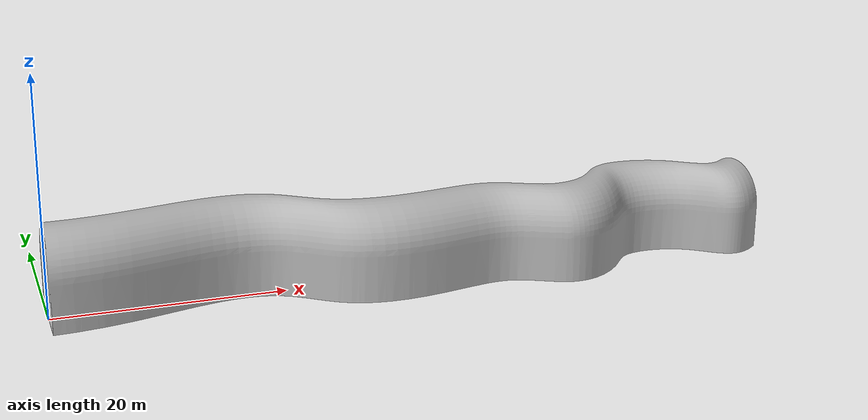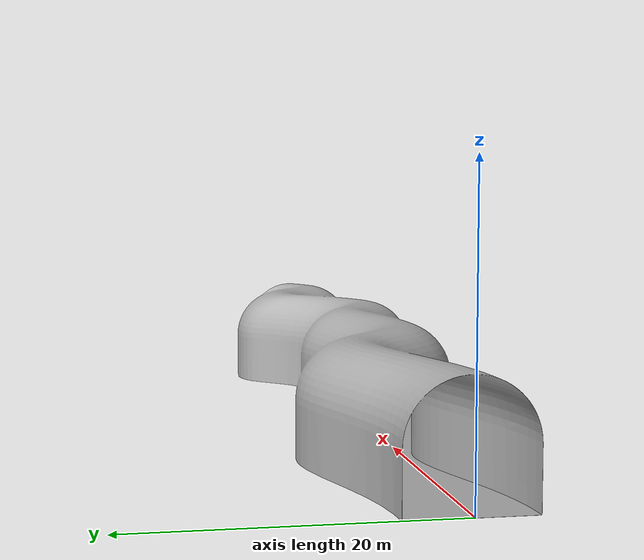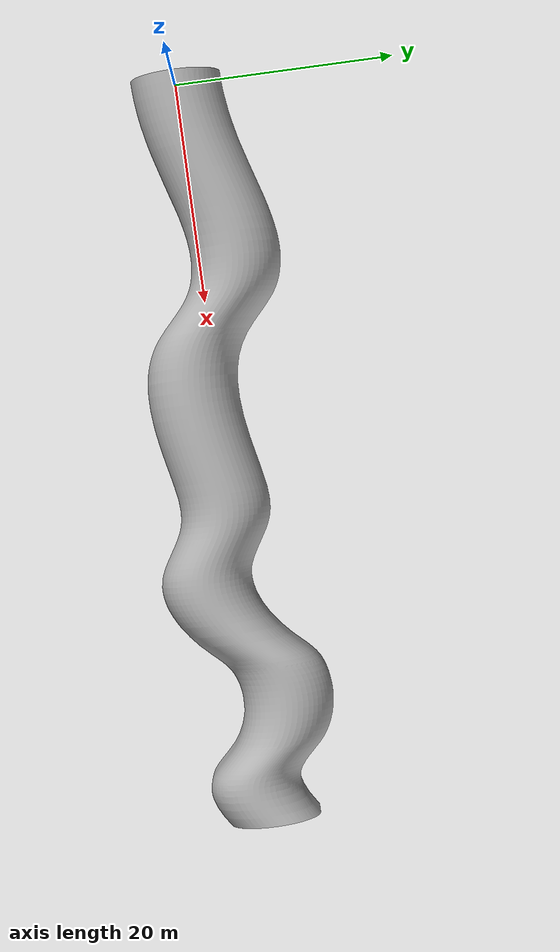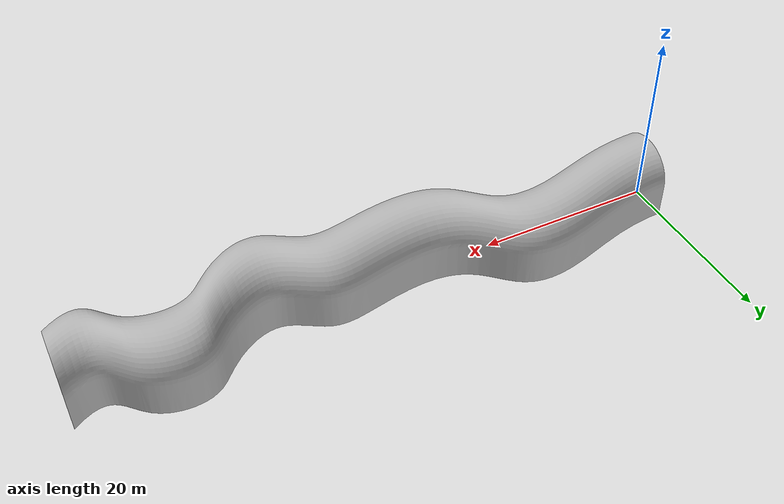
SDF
<?xml version="1.0" ?>
<sdf version="1.5">
  <model name="tunnel_s_shape">
    <static>true</static>
    <link name="tunnel_s_shape">
      <collision name="collision">
        <geometry>
          <mesh>
          <scale>1.00 1.00 1.00</scale>
            <uri>model://tunnel_s_shape/meshes/tunnel_s_shape.dae</uri>
          </mesh>
        </geometry>
      </collision>
      <visual name="visual">
        <geometry>
          <mesh>
          <scale>1.00 1.00 1.00</scale>
            <uri>model://tunnel_s_shape/meshes/tunnel_s_shape.dae</uri>
          </mesh>
        </geometry>
      </visual>
    </link>
  </model>
</sdf>
